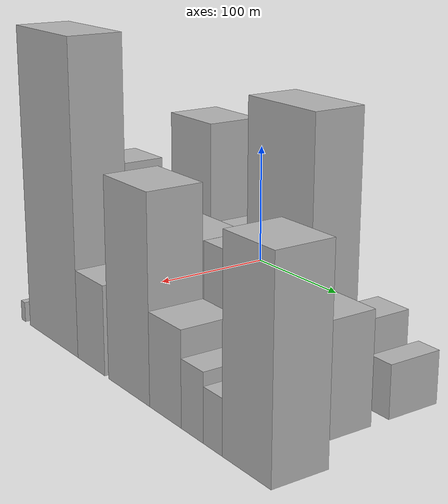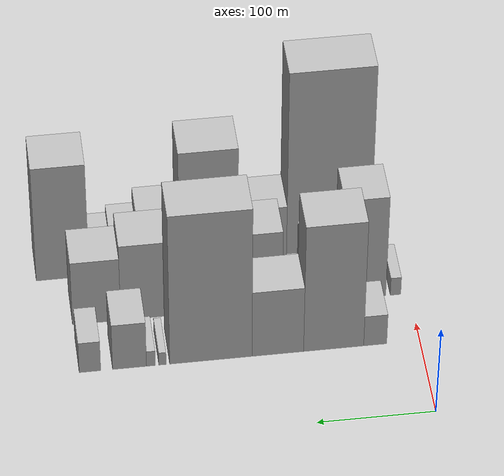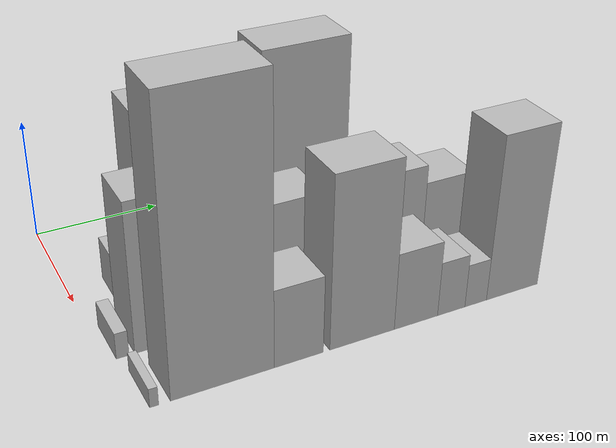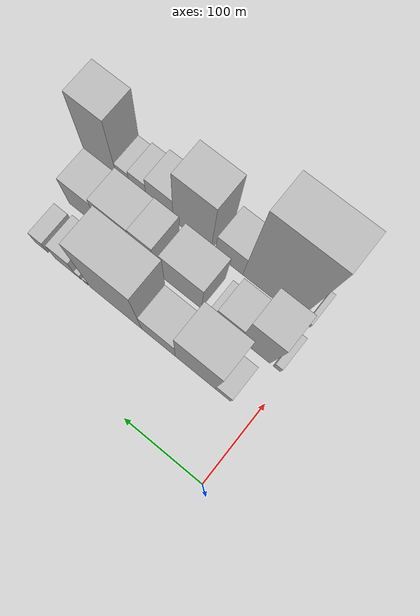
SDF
<sdf version="1.6">
 <world name="default">
  <model name="building_18">
   <static>1</static>
   <pose>100.0000 38.4075 0 0.000000 0.000000 0.000000</pose>
   <link name="link">
    <pose>0 0 18.00 0 0 0</pose>
    <collision name="collision"><geometry><box><size>40.0000 19.6983 36.0000</size></box></geometry></collision>
    <visual name="visual">
     <cast_shadows>0</cast_shadows>
     <geometry><box><size>40.0000 19.6983 36.0000</size></box></geometry>
     <material>
      <script>
       <uri>model://HANNAS_wall/materials/scripts</uri>
       <uri>model://HANNAS_wall/materials/textures</uri>
       <name>vrc/HANNAS_wall</name>
      </script>
     </material>
    </visual>
   </link>
  </model>
  <model name="building_19">
   <static>1</static>
   <pose>100.0000 73.9389 0 0.000000 0.000000 0.000000</pose>
   <link name="link">
    <pose>0 0 75.00 0 0 0</pose>
    <collision name="collision"><geometry><box><size>40.0000 51.3646 150.0000</size></box></geometry></collision>
    <visual name="visual">
     <cast_shadows>0</cast_shadows>
     <geometry><box><size>40.0000 51.3646 150.0000</size></box></geometry>
     <material>
      <script>
       <uri>model://HANNAS_wall/materials/scripts</uri>
       <uri>model://HANNAS_wall/materials/textures</uri>
       <name>vrc/HANNAS_wall</name>
      </script>
     </material>
    </visual>
   </link>
  </model>
  <model name="building_20">
   <static>1</static>
   <pose>100.0000 121.5936 0 0.000000 0.000000 0.000000</pose>
   <link name="link">
    <pose>0 0 39.00 0 0 0</pose>
    <collision name="collision"><geometry><box><size>40.0000 43.9448 78.0000</size></box></geometry></collision>
    <visual name="visual">
     <cast_shadows>0</cast_shadows>
     <geometry><box><size>40.0000 43.9448 78.0000</size></box></geometry>
     <material>
      <script>
       <uri>model://HANNAS_wall/materials/scripts</uri>
       <uri>model://HANNAS_wall/materials/textures</uri>
       <name>vrc/HANNAS_wall</name>
      </script>
     </material>
    </visual>
   </link>
  </model>
  <model name="building_21">
   <static>1</static>
   <pose>100.0000 178.5082 0 0.000000 0.000000 0.000000</pose>
   <link name="link">
    <pose>0 0 88.50 0 0 0</pose>
    <collision name="collision"><geometry><box><size>40.0000 69.8843 177.0000</size></box></geometry></collision>
    <visual name="visual">
     <cast_shadows>0</cast_shadows>
     <geometry><box><size>40.0000 69.8843 177.0000</size></box></geometry>
     <material>
      <script>
       <uri>model://HANNAS_wall/materials/scripts</uri>
       <uri>model://HANNAS_wall/materials/textures</uri>
       <name>vrc/HANNAS_wall</name>
      </script>
     </material>
    </visual>
   </link>
  </model>
  <model name="building_22">
   <static>1</static>
   <pose>100.0000 219.5186 0 0.000000 0.000000 0.000000</pose>
   <link name="link">
    <pose>0 0 7.50 0 0 0</pose>
    <collision name="collision"><geometry><box><size>40.0000 6.1366 15.0000</size></box></geometry></collision>
    <visual name="visual">
     <cast_shadows>0</cast_shadows>
     <geometry><box><size>40.0000 6.1366 15.0000</size></box></geometry>
     <material>
      <script>
       <uri>model://HANNAS_wall/materials/scripts</uri>
       <uri>model://HANNAS_wall/materials/textures</uri>
       <name>vrc/HANNAS_wall</name>
      </script>
     </material>
    </visual>
   </link>
  </model>
  <model name="building_23">
   <static>1</static>
   <pose>100.0000 229.3494 0 0.000000 0.000000 0.000000</pose>
   <link name="link">
    <pose>0 0 9.00 0 0 0</pose>
    <collision name="collision"><geometry><box><size>40.0000 7.5250 18.0000</size></box></geometry></collision>
    <visual name="visual">
     <cast_shadows>0</cast_shadows>
     <geometry><box><size>40.0000 7.5250 18.0000</size></box></geometry>
     <material>
      <script>
       <uri>model://HANNAS_wall/materials/scripts</uri>
       <uri>model://HANNAS_wall/materials/textures</uri>
       <name>vrc/HANNAS_wall</name>
      </script>
     </material>
    </visual>
   </link>
  </model>
  <model name="building_24">
   <static>1</static>
   <pose>100.0000 247.4347 0 0.000000 0.000000 0.000000</pose>
   <link name="link">
    <pose>0 0 27.00 0 0 0</pose>
    <collision name="collision"><geometry><box><size>40.0000 28.6455 54.0000</size></box></geometry></collision>
    <visual name="visual">
     <cast_shadows>0</cast_shadows>
     <geometry><box><size>40.0000 28.6455 54.0000</size></box></geometry>
     <material>
      <script>
       <uri>model://HANNAS_wall/materials/scripts</uri>
       <uri>model://HANNAS_wall/materials/textures</uri>
       <name>vrc/HANNAS_wall</name>
      </script>
     </material>
    </visual>
   </link>
  </model>
  <model name="building_25">
   <static>1</static>
   <pose>100.0000 280.8469 0 0.000000 0.000000 0.000000</pose>
   <link name="link">
    <pose>0 0 18.00 0 0 0</pose>
    <collision name="collision"><geometry><box><size>40.0000 18.1789 36.0000</size></box></geometry></collision>
    <visual name="visual">
     <cast_shadows>0</cast_shadows>
     <geometry><box><size>40.0000 18.1789 36.0000</size></box></geometry>
     <material>
      <script>
       <uri>model://HANNAS_wall/materials/scripts</uri>
       <uri>model://HANNAS_wall/materials/textures</uri>
       <name>vrc/HANNAS_wall</name>
      </script>
     </material>
    </visual>
   </link>
  </model>
  <model name="building_51">
   <static>1</static>
   <pose>155.0000 12.1256 0 0.000000 0.000000 0.000000</pose>
   <link name="link">
    <pose>0 0 10.50 0 0 0</pose>
    <collision name="collision"><geometry><box><size>40.0000 9.0807 21.0000</size></box></geometry></collision>
    <visual name="visual">
     <cast_shadows>0</cast_shadows>
     <geometry><box><size>40.0000 9.0807 21.0000</size></box></geometry>
     <material>
      <script>
       <uri>model://HANNAS_wall/materials/scripts</uri>
       <uri>model://HANNAS_wall/materials/textures</uri>
       <name>vrc/HANNAS_wall</name>
      </script>
     </material>
    </visual>
   </link>
  </model>
  <model name="building_52">
   <static>1</static>
   <pose>155.0000 39.7600 0 0.000000 0.000000 0.000000</pose>
   <link name="link">
    <pose>0 0 60.00 0 0 0</pose>
    <collision name="collision"><geometry><box><size>40.0000 38.1880 120.0000</size></box></geometry></collision>
    <visual name="visual">
     <cast_shadows>0</cast_shadows>
     <geometry><box><size>40.0000 38.1880 120.0000</size></box></geometry>
     <material>
      <script>
       <uri>model://HANNAS_wall/materials/scripts</uri>
       <uri>model://HANNAS_wall/materials/textures</uri>
       <name>vrc/HANNAS_wall</name>
      </script>
     </material>
    </visual>
   </link>
  </model>
  <model name="building_53">
   <static>1</static>
   <pose>155.0000 75.3585 0 0.000000 0.000000 0.000000</pose>
   <link name="link">
    <pose>0 0 30.00 0 0 0</pose>
    <collision name="collision"><geometry><box><size>40.0000 33.0092 60.0000</size></box></geometry></collision>
    <visual name="visual">
     <cast_shadows>0</cast_shadows>
     <geometry><box><size>40.0000 33.0092 60.0000</size></box></geometry>
     <material>
      <script>
       <uri>model://HANNAS_wall/materials/scripts</uri>
       <uri>model://HANNAS_wall/materials/textures</uri>
       <name>vrc/HANNAS_wall</name>
      </script>
     </material>
    </visual>
   </link>
  </model>
  <model name="building_54">
   <static>1</static>
   <pose>155.0000 96.5791 0 0.000000 0.000000 0.000000</pose>
   <link name="link">
    <pose>0 0 10.50 0 0 0</pose>
    <collision name="collision"><geometry><box><size>40.0000 9.4319 21.0000</size></box></geometry></collision>
    <visual name="visual">
     <cast_shadows>0</cast_shadows>
     <geometry><box><size>40.0000 9.4319 21.0000</size></box></geometry>
     <material>
      <script>
       <uri>model://HANNAS_wall/materials/scripts</uri>
       <uri>model://HANNAS_wall/materials/textures</uri>
       <name>vrc/HANNAS_wall</name>
      </script>
     </material>
    </visual>
   </link>
  </model>
  <model name="building_55">
   <static>1</static>
   <pose>155.0000 136.9483 0 0.000000 0.000000 0.000000</pose>
   <link name="link">
    <pose>0 0 45.00 0 0 0</pose>
    <collision name="collision"><geometry><box><size>40.0000 53.3066 90.0000</size></box></geometry></collision>
    <visual name="visual">
     <cast_shadows>0</cast_shadows>
     <geometry><box><size>40.0000 53.3066 90.0000</size></box></geometry>
     <material>
      <script>
       <uri>model://HANNAS_wall/materials/scripts</uri>
       <uri>model://HANNAS_wall/materials/textures</uri>
       <name>vrc/HANNAS_wall</name>
      </script>
     </material>
    </visual>
   </link>
  </model>
  <model name="building_56">
   <static>1</static>
   <pose>155.0000 186.3522 0 0.000000 0.000000 0.000000</pose>
   <link name="link">
    <pose>0 0 46.50 0 0 0</pose>
    <collision name="collision"><geometry><box><size>40.0000 29.5012 93.0000</size></box></geometry></collision>
    <visual name="visual">
     <cast_shadows>0</cast_shadows>
     <geometry><box><size>40.0000 29.5012 93.0000</size></box></geometry>
     <material>
      <script>
       <uri>model://HANNAS_wall/materials/scripts</uri>
       <uri>model://HANNAS_wall/materials/textures</uri>
       <name>vrc/HANNAS_wall</name>
      </script>
     </material>
    </visual>
   </link>
  </model>
  <model name="building_57">
   <static>1</static>
   <pose>155.0000 225.1708 0 0.000000 0.000000 0.000000</pose>
   <link name="link">
    <pose>0 0 45.00 0 0 0</pose>
    <collision name="collision"><geometry><box><size>40.0000 48.1358 90.0000</size></box></geometry></collision>
    <visual name="visual">
     <cast_shadows>0</cast_shadows>
     <geometry><box><size>40.0000 48.1358 90.0000</size></box></geometry>
     <material>
      <script>
       <uri>model://HANNAS_wall/materials/scripts</uri>
       <uri>model://HANNAS_wall/materials/textures</uri>
       <name>vrc/HANNAS_wall</name>
      </script>
     </material>
    </visual>
   </link>
  </model>
  <model name="building_58">
   <static>1</static>
   <pose>155.0000 269.8080 0 0.000000 0.000000 0.000000</pose>
   <link name="link">
    <pose>0 0 37.50 0 0 0</pose>
    <collision name="collision"><geometry><box><size>40.0000 41.1387 75.0000</size></box></geometry></collision>
    <visual name="visual">
     <cast_shadows>0</cast_shadows>
     <geometry><box><size>40.0000 41.1387 75.0000</size></box></geometry>
     <material>
      <script>
       <uri>model://HANNAS_wall/materials/scripts</uri>
       <uri>model://HANNAS_wall/materials/textures</uri>
       <name>vrc/HANNAS_wall</name>
      </script>
     </material>
    </visual>
   </link>
  </model>
  <model name="building_83">
   <static>1</static>
   <pose>210.0000 14.3183 0 0.000000 0.000000 0.000000</pose>
   <link name="link">
    <pose>0 0 7.50 0 0 0</pose>
    <collision name="collision"><geometry><box><size>40.0000 6.0995 15.0000</size></box></geometry></collision>
    <visual name="visual">
     <cast_shadows>0</cast_shadows>
     <geometry><box><size>40.0000 6.0995 15.0000</size></box></geometry>
     <material>
      <script>
       <uri>model://HANNAS_wall/materials/scripts</uri>
       <uri>model://HANNAS_wall/materials/textures</uri>
       <name>vrc/HANNAS_wall</name>
      </script>
     </material>
    </visual>
   </link>
  </model>
  <model name="building_84">
   <static>1</static>
   <pose>210.0000 62.2147 0 0.000000 0.000000 0.000000</pose>
   <link name="link">
    <pose>0 0 109.50 0 0 0</pose>
    <collision name="collision"><geometry><box><size>40.0000 73.6932 219.0000</size></box></geometry></collision>
    <visual name="visual">
     <cast_shadows>0</cast_shadows>
     <geometry><box><size>40.0000 73.6932 219.0000</size></box></geometry>
     <material>
      <script>
       <uri>model://HANNAS_wall/materials/scripts</uri>
       <uri>model://HANNAS_wall/materials/textures</uri>
       <name>vrc/HANNAS_wall</name>
      </script>
     </material>
    </visual>
   </link>
  </model>
  <model name="building_85">
   <static>1</static>
   <pose>210.0000 117.6365 0 0.000000 0.000000 0.000000</pose>
   <link name="link">
    <pose>0 0 31.50 0 0 0</pose>
    <collision name="collision"><geometry><box><size>40.0000 37.1504 63.0000</size></box></geometry></collision>
    <visual name="visual">
     <cast_shadows>0</cast_shadows>
     <geometry><box><size>40.0000 37.1504 63.0000</size></box></geometry>
     <material>
      <script>
       <uri>model://HANNAS_wall/materials/scripts</uri>
       <uri>model://HANNAS_wall/materials/textures</uri>
       <name>vrc/HANNAS_wall</name>
      </script>
     </material>
    </visual>
   </link>
  </model>
  <model name="building_86">
   <static>1</static>
   <pose>210.0000 166.8651 0 0.000000 0.000000 0.000000</pose>
   <link name="link">
    <pose>0 0 69.00 0 0 0</pose>
    <collision name="collision"><geometry><box><size>40.0000 51.3069 138.0000</size></box></geometry></collision>
    <visual name="visual">
     <cast_shadows>0</cast_shadows>
     <geometry><box><size>40.0000 51.3069 138.0000</size></box></geometry>
     <material>
      <script>
       <uri>model://HANNAS_wall/materials/scripts</uri>
       <uri>model://HANNAS_wall/materials/textures</uri>
       <name>vrc/HANNAS_wall</name>
      </script>
     </material>
    </visual>
   </link>
  </model>
  <model name="building_87">
   <static>1</static>
   <pose>210.0000 210.5020 0 0.000000 0.000000 0.000000</pose>
   <link name="link">
    <pose>0 0 31.50 0 0 0</pose>
    <collision name="collision"><geometry><box><size>40.0000 35.9668 63.0000</size></box></geometry></collision>
    <visual name="visual">
     <cast_shadows>0</cast_shadows>
     <geometry><box><size>40.0000 35.9668 63.0000</size></box></geometry>
     <material>
      <script>
       <uri>model://HANNAS_wall/materials/scripts</uri>
       <uri>model://HANNAS_wall/materials/textures</uri>
       <name>vrc/HANNAS_wall</name>
      </script>
     </material>
    </visual>
   </link>
  </model>
  <model name="building_88">
   <static>1</static>
   <pose>210.0000 240.1995 0 0.000000 0.000000 0.000000</pose>
   <link name="link">
    <pose>0 0 22.50 0 0 0</pose>
    <collision name="collision"><geometry><box><size>40.0000 23.4282 45.0000</size></box></geometry></collision>
    <visual name="visual">
     <cast_shadows>0</cast_shadows>
     <geometry><box><size>40.0000 23.4282 45.0000</size></box></geometry>
     <material>
      <script>
       <uri>model://HANNAS_wall/materials/scripts</uri>
       <uri>model://HANNAS_wall/materials/textures</uri>
       <name>vrc/HANNAS_wall</name>
      </script>
     </material>
    </visual>
   </link>
  </model>
  <model name="building_89">
   <static>1</static>
   <pose>210.0000 261.3633 0 0.000000 0.000000 0.000000</pose>
   <link name="link">
    <pose>0 0 18.00 0 0 0</pose>
    <collision name="collision"><geometry><box><size>40.0000 18.8995 36.0000</size></box></geometry></collision>
    <visual name="visual">
     <cast_shadows>0</cast_shadows>
     <geometry><box><size>40.0000 18.8995 36.0000</size></box></geometry>
     <material>
      <script>
       <uri>model://HANNAS_wall/materials/scripts</uri>
       <uri>model://HANNAS_wall/materials/textures</uri>
       <name>vrc/HANNAS_wall</name>
      </script>
     </material>
    </visual>
   </link>
  </model>
  <model name="building_90">
   <static>1</static>
   <pose>210.0000 293.7260 0 0.000000 0.000000 0.000000</pose>
   <link name="link">
    <pose>0 0 67.50 0 0 0</pose>
    <collision name="collision"><geometry><box><size>40.0000 45.8259 135.0000</size></box></geometry></collision>
    <visual name="visual">
     <cast_shadows>0</cast_shadows>
     <geometry><box><size>40.0000 45.8259 135.0000</size></box></geometry>
     <material>
      <script>
       <uri>model://HANNAS_wall/materials/scripts</uri>
       <uri>model://HANNAS_wall/materials/textures</uri>
       <name>vrc/HANNAS_wall</name>
      </script>
     </material>
    </visual>
   </link>
  </model>
 </world>
</sdf>
